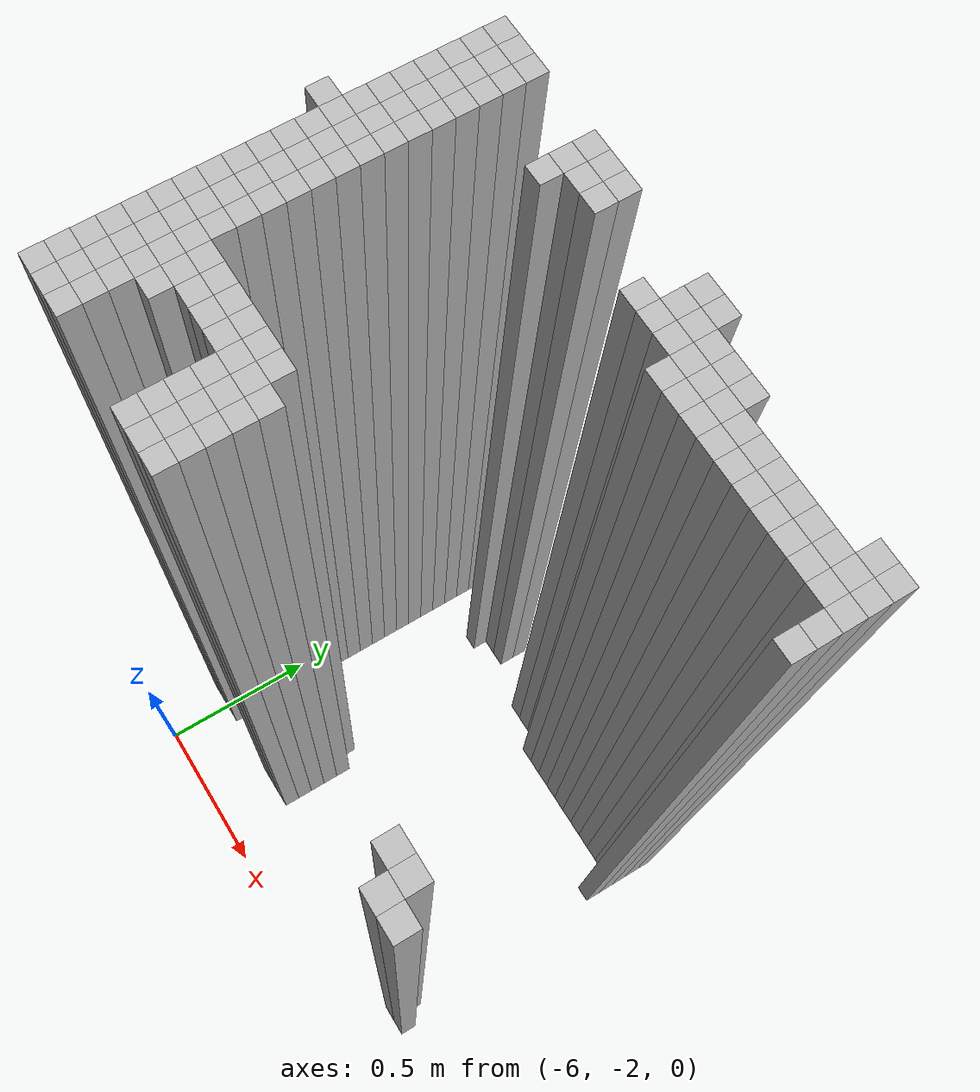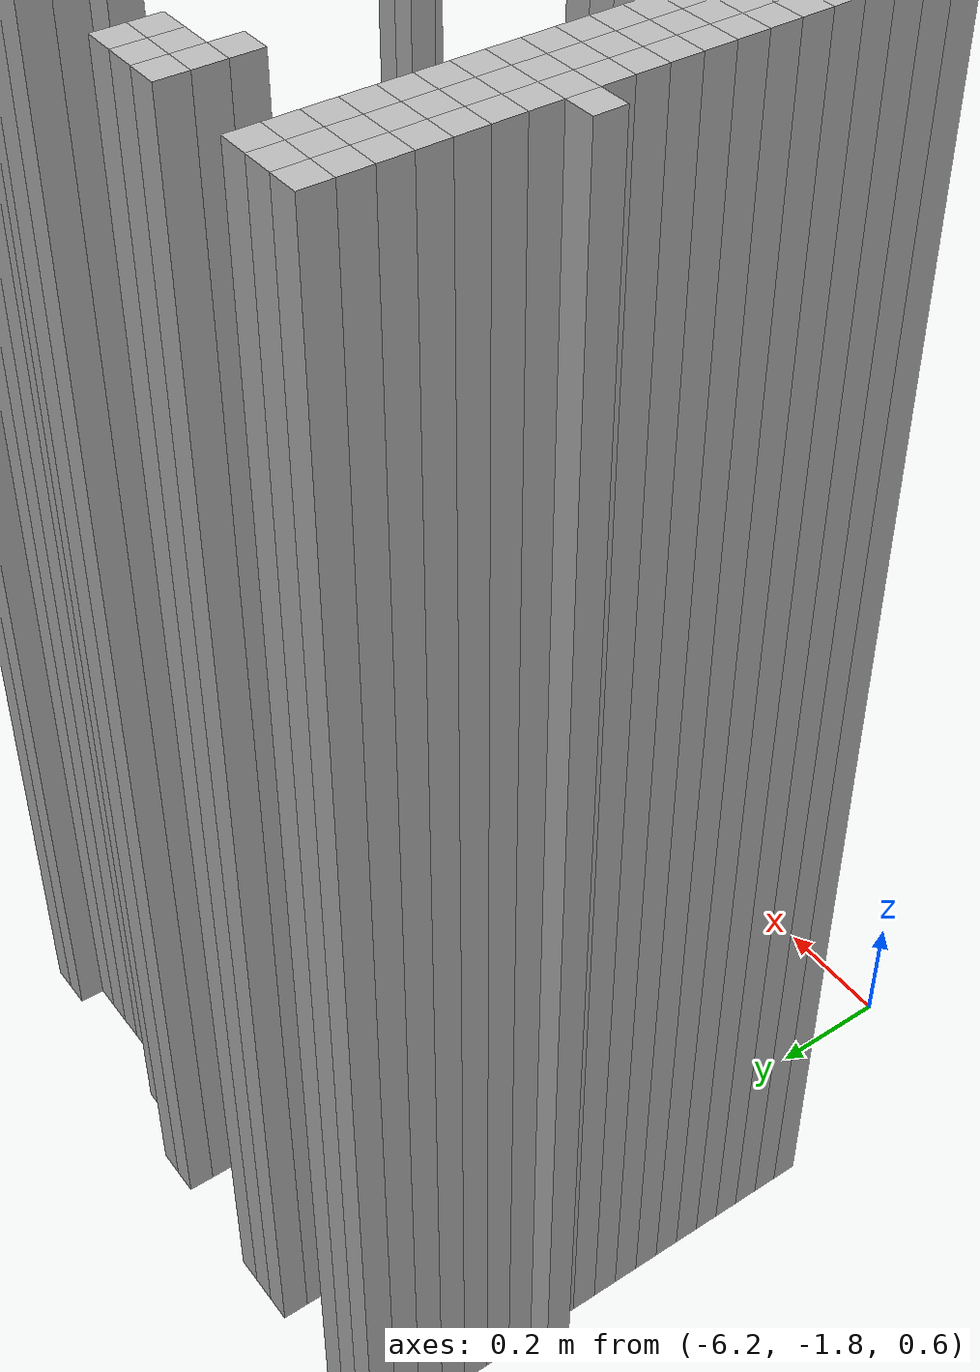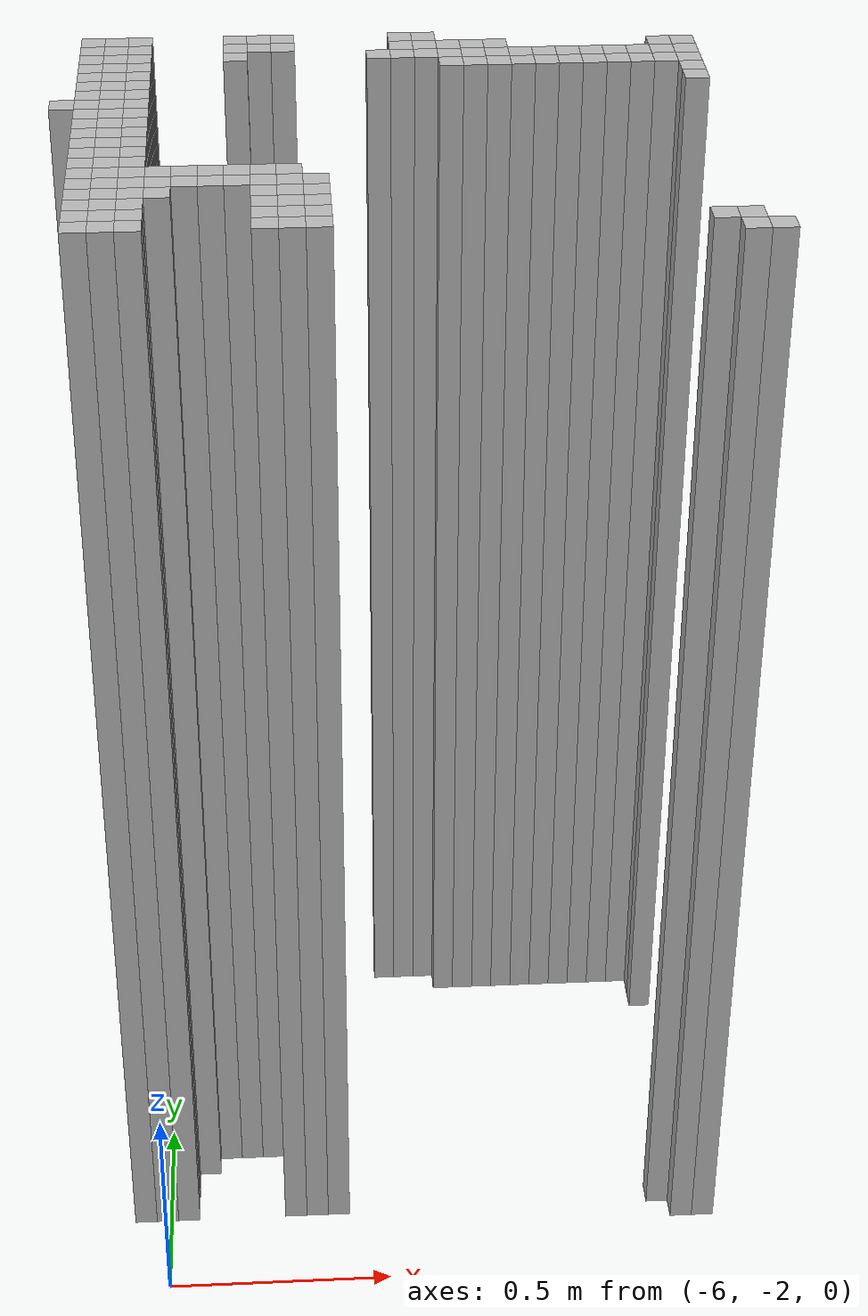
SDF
<sdf version="1.9">
 <world name="map_world">
  <model name="wall_102_170">
   <static>true</static>
   <pose>-6.061 -0.820 1.250 0 0 0</pose>
   <link name="link">
    <collision name="collision"><geometry><box><size>0.050 0.050 2.500</size></box></geometry></collision>
    <visual name="visual"><geometry><box><size>0.050 0.050 2.500</size></box></geometry></visual>
   </link>
  </model>
  <model name="wall_103_170">
   <static>true</static>
   <pose>-6.011 -0.820 1.250 0 0 0</pose>
   <link name="link">
    <collision name="collision"><geometry><box><size>0.050 0.050 2.500</size></box></geometry></collision>
    <visual name="visual"><geometry><box><size>0.050 0.050 2.500</size></box></geometry></visual>
   </link>
  </model>
  <model name="wall_104_170">
   <static>true</static>
   <pose>-5.961 -0.820 1.250 0 0 0</pose>
   <link name="link">
    <collision name="collision"><geometry><box><size>0.050 0.050 2.500</size></box></geometry></collision>
    <visual name="visual"><geometry><box><size>0.050 0.050 2.500</size></box></geometry></visual>
   </link>
  </model>
  <model name="wall_108_170">
   <static>true</static>
   <pose>-5.761 -0.820 1.250 0 0 0</pose>
   <link name="link">
    <collision name="collision"><geometry><box><size>0.050 0.050 2.500</size></box></geometry></collision>
    <visual name="visual"><geometry><box><size>0.050 0.050 2.500</size></box></geometry></visual>
   </link>
  </model>
  <model name="wall_109_170">
   <static>true</static>
   <pose>-5.711 -0.820 1.250 0 0 0</pose>
   <link name="link">
    <collision name="collision"><geometry><box><size>0.050 0.050 2.500</size></box></geometry></collision>
    <visual name="visual"><geometry><box><size>0.050 0.050 2.500</size></box></geometry></visual>
   </link>
  </model>
  <model name="wall_110_170">
   <static>true</static>
   <pose>-5.661 -0.820 1.250 0 0 0</pose>
   <link name="link">
    <collision name="collision"><geometry><box><size>0.050 0.050 2.500</size></box></geometry></collision>
    <visual name="visual"><geometry><box><size>0.050 0.050 2.500</size></box></geometry></visual>
   </link>
  </model>
  <model name="wall_115_170">
   <static>true</static>
   <pose>-5.411 -0.820 1.250 0 0 0</pose>
   <link name="link">
    <collision name="collision"><geometry><box><size>0.050 0.050 2.500</size></box></geometry></collision>
    <visual name="visual"><geometry><box><size>0.050 0.050 2.500</size></box></geometry></visual>
   </link>
  </model>
  <model name="wall_116_170">
   <static>true</static>
   <pose>-5.361 -0.820 1.250 0 0 0</pose>
   <link name="link">
    <collision name="collision"><geometry><box><size>0.050 0.050 2.500</size></box></geometry></collision>
    <visual name="visual"><geometry><box><size>0.050 0.050 2.500</size></box></geometry></visual>
   </link>
  </model>
  <model name="wall_102_171">
   <static>true</static>
   <pose>-6.061 -0.870 1.250 0 0 0</pose>
   <link name="link">
    <collision name="collision"><geometry><box><size>0.050 0.050 2.500</size></box></geometry></collision>
    <visual name="visual"><geometry><box><size>0.050 0.050 2.500</size></box></geometry></visual>
   </link>
  </model>
  <model name="wall_103_171">
   <static>true</static>
   <pose>-6.011 -0.870 1.250 0 0 0</pose>
   <link name="link">
    <collision name="collision"><geometry><box><size>0.050 0.050 2.500</size></box></geometry></collision>
    <visual name="visual"><geometry><box><size>0.050 0.050 2.500</size></box></geometry></visual>
   </link>
  </model>
  <model name="wall_104_171">
   <static>true</static>
   <pose>-5.961 -0.870 1.250 0 0 0</pose>
   <link name="link">
    <collision name="collision"><geometry><box><size>0.050 0.050 2.500</size></box></geometry></collision>
    <visual name="visual"><geometry><box><size>0.050 0.050 2.500</size></box></geometry></visual>
   </link>
  </model>
  <model name="wall_108_171">
   <static>true</static>
   <pose>-5.761 -0.870 1.250 0 0 0</pose>
   <link name="link">
    <collision name="collision"><geometry><box><size>0.050 0.050 2.500</size></box></geometry></collision>
    <visual name="visual"><geometry><box><size>0.050 0.050 2.500</size></box></geometry></visual>
   </link>
  </model>
  <model name="wall_109_171">
   <static>true</static>
   <pose>-5.711 -0.870 1.250 0 0 0</pose>
   <link name="link">
    <collision name="collision"><geometry><box><size>0.050 0.050 2.500</size></box></geometry></collision>
    <visual name="visual"><geometry><box><size>0.050 0.050 2.500</size></box></geometry></visual>
   </link>
  </model>
  <model name="wall_110_171">
   <static>true</static>
   <pose>-5.661 -0.870 1.250 0 0 0</pose>
   <link name="link">
    <collision name="collision"><geometry><box><size>0.050 0.050 2.500</size></box></geometry></collision>
    <visual name="visual"><geometry><box><size>0.050 0.050 2.500</size></box></geometry></visual>
   </link>
  </model>
  <model name="wall_115_171">
   <static>true</static>
   <pose>-5.411 -0.870 1.250 0 0 0</pose>
   <link name="link">
    <collision name="collision"><geometry><box><size>0.050 0.050 2.500</size></box></geometry></collision>
    <visual name="visual"><geometry><box><size>0.050 0.050 2.500</size></box></geometry></visual>
   </link>
  </model>
  <model name="wall_116_171">
   <static>true</static>
   <pose>-5.361 -0.870 1.250 0 0 0</pose>
   <link name="link">
    <collision name="collision"><geometry><box><size>0.050 0.050 2.500</size></box></geometry></collision>
    <visual name="visual"><geometry><box><size>0.050 0.050 2.500</size></box></geometry></visual>
   </link>
  </model>
  <model name="wall_117_171">
   <static>true</static>
   <pose>-5.311 -0.870 1.250 0 0 0</pose>
   <link name="link">
    <collision name="collision"><geometry><box><size>0.050 0.050 2.500</size></box></geometry></collision>
    <visual name="visual"><geometry><box><size>0.050 0.050 2.500</size></box></geometry></visual>
   </link>
  </model>
  <model name="wall_118_171">
   <static>true</static>
   <pose>-5.261 -0.870 1.250 0 0 0</pose>
   <link name="link">
    <collision name="collision"><geometry><box><size>0.050 0.050 2.500</size></box></geometry></collision>
    <visual name="visual"><geometry><box><size>0.050 0.050 2.500</size></box></geometry></visual>
   </link>
  </model>
  <model name="wall_119_171">
   <static>true</static>
   <pose>-5.211 -0.870 1.250 0 0 0</pose>
   <link name="link">
    <collision name="collision"><geometry><box><size>0.050 0.050 2.500</size></box></geometry></collision>
    <visual name="visual"><geometry><box><size>0.050 0.050 2.500</size></box></geometry></visual>
   </link>
  </model>
  <model name="wall_126_171">
   <static>true</static>
   <pose>-4.861 -0.870 1.250 0 0 0</pose>
   <link name="link">
    <collision name="collision"><geometry><box><size>0.050 0.050 2.500</size></box></geometry></collision>
    <visual name="visual"><geometry><box><size>0.050 0.050 2.500</size></box></geometry></visual>
   </link>
  </model>
  <model name="wall_127_171">
   <static>true</static>
   <pose>-4.811 -0.870 1.250 0 0 0</pose>
   <link name="link">
    <collision name="collision"><geometry><box><size>0.050 0.050 2.500</size></box></geometry></collision>
    <visual name="visual"><geometry><box><size>0.050 0.050 2.500</size></box></geometry></visual>
   </link>
  </model>
  <model name="wall_102_172">
   <static>true</static>
   <pose>-6.061 -0.920 1.250 0 0 0</pose>
   <link name="link">
    <collision name="collision"><geometry><box><size>0.050 0.050 2.500</size></box></geometry></collision>
    <visual name="visual"><geometry><box><size>0.050 0.050 2.500</size></box></geometry></visual>
   </link>
  </model>
  <model name="wall_103_172">
   <static>true</static>
   <pose>-6.011 -0.920 1.250 0 0 0</pose>
   <link name="link">
    <collision name="collision"><geometry><box><size>0.050 0.050 2.500</size></box></geometry></collision>
    <visual name="visual"><geometry><box><size>0.050 0.050 2.500</size></box></geometry></visual>
   </link>
  </model>
  <model name="wall_104_172">
   <static>true</static>
   <pose>-5.961 -0.920 1.250 0 0 0</pose>
   <link name="link">
    <collision name="collision"><geometry><box><size>0.050 0.050 2.500</size></box></geometry></collision>
    <visual name="visual"><geometry><box><size>0.050 0.050 2.500</size></box></geometry></visual>
   </link>
  </model>
  <model name="wall_108_172">
   <static>true</static>
   <pose>-5.761 -0.920 1.250 0 0 0</pose>
   <link name="link">
    <collision name="collision"><geometry><box><size>0.050 0.050 2.500</size></box></geometry></collision>
    <visual name="visual"><geometry><box><size>0.050 0.050 2.500</size></box></geometry></visual>
   </link>
  </model>
  <model name="wall_114_172">
   <static>true</static>
   <pose>-5.461 -0.920 1.250 0 0 0</pose>
   <link name="link">
    <collision name="collision"><geometry><box><size>0.050 0.050 2.500</size></box></geometry></collision>
    <visual name="visual"><geometry><box><size>0.050 0.050 2.500</size></box></geometry></visual>
   </link>
  </model>
  <model name="wall_115_172">
   <static>true</static>
   <pose>-5.411 -0.920 1.250 0 0 0</pose>
   <link name="link">
    <collision name="collision"><geometry><box><size>0.050 0.050 2.500</size></box></geometry></collision>
    <visual name="visual"><geometry><box><size>0.050 0.050 2.500</size></box></geometry></visual>
   </link>
  </model>
  <model name="wall_116_172">
   <static>true</static>
   <pose>-5.361 -0.920 1.250 0 0 0</pose>
   <link name="link">
    <collision name="collision"><geometry><box><size>0.050 0.050 2.500</size></box></geometry></collision>
    <visual name="visual"><geometry><box><size>0.050 0.050 2.500</size></box></geometry></visual>
   </link>
  </model>
  <model name="wall_117_172">
   <static>true</static>
   <pose>-5.311 -0.920 1.250 0 0 0</pose>
   <link name="link">
    <collision name="collision"><geometry><box><size>0.050 0.050 2.500</size></box></geometry></collision>
    <visual name="visual"><geometry><box><size>0.050 0.050 2.500</size></box></geometry></visual>
   </link>
  </model>
  <model name="wall_118_172">
   <static>true</static>
   <pose>-5.261 -0.920 1.250 0 0 0</pose>
   <link name="link">
    <collision name="collision"><geometry><box><size>0.050 0.050 2.500</size></box></geometry></collision>
    <visual name="visual"><geometry><box><size>0.050 0.050 2.500</size></box></geometry></visual>
   </link>
  </model>
  <model name="wall_119_172">
   <static>true</static>
   <pose>-5.211 -0.920 1.250 0 0 0</pose>
   <link name="link">
    <collision name="collision"><geometry><box><size>0.050 0.050 2.500</size></box></geometry></collision>
    <visual name="visual"><geometry><box><size>0.050 0.050 2.500</size></box></geometry></visual>
   </link>
  </model>
  <model name="wall_120_172">
   <static>true</static>
   <pose>-5.161 -0.920 1.250 0 0 0</pose>
   <link name="link">
    <collision name="collision"><geometry><box><size>0.050 0.050 2.500</size></box></geometry></collision>
    <visual name="visual"><geometry><box><size>0.050 0.050 2.500</size></box></geometry></visual>
   </link>
  </model>
  <model name="wall_121_172">
   <static>true</static>
   <pose>-5.111 -0.920 1.250 0 0 0</pose>
   <link name="link">
    <collision name="collision"><geometry><box><size>0.050 0.050 2.500</size></box></geometry></collision>
    <visual name="visual"><geometry><box><size>0.050 0.050 2.500</size></box></geometry></visual>
   </link>
  </model>
  <model name="wall_122_172">
   <static>true</static>
   <pose>-5.061 -0.920 1.250 0 0 0</pose>
   <link name="link">
    <collision name="collision"><geometry><box><size>0.050 0.050 2.500</size></box></geometry></collision>
    <visual name="visual"><geometry><box><size>0.050 0.050 2.500</size></box></geometry></visual>
   </link>
  </model>
  <model name="wall_123_172">
   <static>true</static>
   <pose>-5.011 -0.920 1.250 0 0 0</pose>
   <link name="link">
    <collision name="collision"><geometry><box><size>0.050 0.050 2.500</size></box></geometry></collision>
    <visual name="visual"><geometry><box><size>0.050 0.050 2.500</size></box></geometry></visual>
   </link>
  </model>
  <model name="wall_124_172">
   <static>true</static>
   <pose>-4.961 -0.920 1.250 0 0 0</pose>
   <link name="link">
    <collision name="collision"><geometry><box><size>0.050 0.050 2.500</size></box></geometry></collision>
    <visual name="visual"><geometry><box><size>0.050 0.050 2.500</size></box></geometry></visual>
   </link>
  </model>
  <model name="wall_125_172">
   <static>true</static>
   <pose>-4.911 -0.920 1.250 0 0 0</pose>
   <link name="link">
    <collision name="collision"><geometry><box><size>0.050 0.050 2.500</size></box></geometry></collision>
    <visual name="visual"><geometry><box><size>0.050 0.050 2.500</size></box></geometry></visual>
   </link>
  </model>
  <model name="wall_126_172">
   <static>true</static>
   <pose>-4.861 -0.920 1.250 0 0 0</pose>
   <link name="link">
    <collision name="collision"><geometry><box><size>0.050 0.050 2.500</size></box></geometry></collision>
    <visual name="visual"><geometry><box><size>0.050 0.050 2.500</size></box></geometry></visual>
   </link>
  </model>
  <model name="wall_127_172">
   <static>true</static>
   <pose>-4.811 -0.920 1.250 0 0 0</pose>
   <link name="link">
    <collision name="collision"><geometry><box><size>0.050 0.050 2.500</size></box></geometry></collision>
    <visual name="visual"><geometry><box><size>0.050 0.050 2.500</size></box></geometry></visual>
   </link>
  </model>
  <model name="wall_102_173">
   <static>true</static>
   <pose>-6.061 -0.970 1.250 0 0 0</pose>
   <link name="link">
    <collision name="collision"><geometry><box><size>0.050 0.050 2.500</size></box></geometry></collision>
    <visual name="visual"><geometry><box><size>0.050 0.050 2.500</size></box></geometry></visual>
   </link>
  </model>
  <model name="wall_103_173">
   <static>true</static>
   <pose>-6.011 -0.970 1.250 0 0 0</pose>
   <link name="link">
    <collision name="collision"><geometry><box><size>0.050 0.050 2.500</size></box></geometry></collision>
    <visual name="visual"><geometry><box><size>0.050 0.050 2.500</size></box></geometry></visual>
   </link>
  </model>
  <model name="wall_104_173">
   <static>true</static>
   <pose>-5.961 -0.970 1.250 0 0 0</pose>
   <link name="link">
    <collision name="collision"><geometry><box><size>0.050 0.050 2.500</size></box></geometry></collision>
    <visual name="visual"><geometry><box><size>0.050 0.050 2.500</size></box></geometry></visual>
   </link>
  </model>
  <model name="wall_117_173">
   <static>true</static>
   <pose>-5.311 -0.970 1.250 0 0 0</pose>
   <link name="link">
    <collision name="collision"><geometry><box><size>0.050 0.050 2.500</size></box></geometry></collision>
    <visual name="visual"><geometry><box><size>0.050 0.050 2.500</size></box></geometry></visual>
   </link>
  </model>
  <model name="wall_118_173">
   <static>true</static>
   <pose>-5.261 -0.970 1.250 0 0 0</pose>
   <link name="link">
    <collision name="collision"><geometry><box><size>0.050 0.050 2.500</size></box></geometry></collision>
    <visual name="visual"><geometry><box><size>0.050 0.050 2.500</size></box></geometry></visual>
   </link>
  </model>
  <model name="wall_119_173">
   <static>true</static>
   <pose>-5.211 -0.970 1.250 0 0 0</pose>
   <link name="link">
    <collision name="collision"><geometry><box><size>0.050 0.050 2.500</size></box></geometry></collision>
    <visual name="visual"><geometry><box><size>0.050 0.050 2.500</size></box></geometry></visual>
   </link>
  </model>
  <model name="wall_120_173">
   <static>true</static>
   <pose>-5.161 -0.970 1.250 0 0 0</pose>
   <link name="link">
    <collision name="collision"><geometry><box><size>0.050 0.050 2.500</size></box></geometry></collision>
    <visual name="visual"><geometry><box><size>0.050 0.050 2.500</size></box></geometry></visual>
   </link>
  </model>
  <model name="wall_121_173">
   <static>true</static>
   <pose>-5.111 -0.970 1.250 0 0 0</pose>
   <link name="link">
    <collision name="collision"><geometry><box><size>0.050 0.050 2.500</size></box></geometry></collision>
    <visual name="visual"><geometry><box><size>0.050 0.050 2.500</size></box></geometry></visual>
   </link>
  </model>
  <model name="wall_122_173">
   <static>true</static>
   <pose>-5.061 -0.970 1.250 0 0 0</pose>
   <link name="link">
    <collision name="collision"><geometry><box><size>0.050 0.050 2.500</size></box></geometry></collision>
    <visual name="visual"><geometry><box><size>0.050 0.050 2.500</size></box></geometry></visual>
   </link>
  </model>
  <model name="wall_123_173">
   <static>true</static>
   <pose>-5.011 -0.970 1.250 0 0 0</pose>
   <link name="link">
    <collision name="collision"><geometry><box><size>0.050 0.050 2.500</size></box></geometry></collision>
    <visual name="visual"><geometry><box><size>0.050 0.050 2.500</size></box></geometry></visual>
   </link>
  </model>
  <model name="wall_124_173">
   <static>true</static>
   <pose>-4.961 -0.970 1.250 0 0 0</pose>
   <link name="link">
    <collision name="collision"><geometry><box><size>0.050 0.050 2.500</size></box></geometry></collision>
    <visual name="visual"><geometry><box><size>0.050 0.050 2.500</size></box></geometry></visual>
   </link>
  </model>
  <model name="wall_125_173">
   <static>true</static>
   <pose>-4.911 -0.970 1.250 0 0 0</pose>
   <link name="link">
    <collision name="collision"><geometry><box><size>0.050 0.050 2.500</size></box></geometry></collision>
    <visual name="visual"><geometry><box><size>0.050 0.050 2.500</size></box></geometry></visual>
   </link>
  </model>
  <model name="wall_126_173">
   <static>true</static>
   <pose>-4.861 -0.970 1.250 0 0 0</pose>
   <link name="link">
    <collision name="collision"><geometry><box><size>0.050 0.050 2.500</size></box></geometry></collision>
    <visual name="visual"><geometry><box><size>0.050 0.050 2.500</size></box></geometry></visual>
   </link>
  </model>
  <model name="wall_127_173">
   <static>true</static>
   <pose>-4.811 -0.970 1.250 0 0 0</pose>
   <link name="link">
    <collision name="collision"><geometry><box><size>0.050 0.050 2.500</size></box></geometry></collision>
    <visual name="visual"><geometry><box><size>0.050 0.050 2.500</size></box></geometry></visual>
   </link>
  </model>
  <model name="wall_102_174">
   <static>true</static>
   <pose>-6.061 -1.020 1.250 0 0 0</pose>
   <link name="link">
    <collision name="collision"><geometry><box><size>0.050 0.050 2.500</size></box></geometry></collision>
    <visual name="visual"><geometry><box><size>0.050 0.050 2.500</size></box></geometry></visual>
   </link>
  </model>
  <model name="wall_103_174">
   <static>true</static>
   <pose>-6.011 -1.020 1.250 0 0 0</pose>
   <link name="link">
    <collision name="collision"><geometry><box><size>0.050 0.050 2.500</size></box></geometry></collision>
    <visual name="visual"><geometry><box><size>0.050 0.050 2.500</size></box></geometry></visual>
   </link>
  </model>
  <model name="wall_104_174">
   <static>true</static>
   <pose>-5.961 -1.020 1.250 0 0 0</pose>
   <link name="link">
    <collision name="collision"><geometry><box><size>0.050 0.050 2.500</size></box></geometry></collision>
    <visual name="visual"><geometry><box><size>0.050 0.050 2.500</size></box></geometry></visual>
   </link>
  </model>
  <model name="wall_127_174">
   <static>true</static>
   <pose>-4.811 -1.020 1.250 0 0 0</pose>
   <link name="link">
    <collision name="collision"><geometry><box><size>0.050 0.050 2.500</size></box></geometry></collision>
    <visual name="visual"><geometry><box><size>0.050 0.050 2.500</size></box></geometry></visual>
   </link>
  </model>
  <model name="wall_102_175">
   <static>true</static>
   <pose>-6.061 -1.070 1.250 0 0 0</pose>
   <link name="link">
    <collision name="collision"><geometry><box><size>0.050 0.050 2.500</size></box></geometry></collision>
    <visual name="visual"><geometry><box><size>0.050 0.050 2.500</size></box></geometry></visual>
   </link>
  </model>
  <model name="wall_103_175">
   <static>true</static>
   <pose>-6.011 -1.070 1.250 0 0 0</pose>
   <link name="link">
    <collision name="collision"><geometry><box><size>0.050 0.050 2.500</size></box></geometry></collision>
    <visual name="visual"><geometry><box><size>0.050 0.050 2.500</size></box></geometry></visual>
   </link>
  </model>
  <model name="wall_104_175">
   <static>true</static>
   <pose>-5.961 -1.070 1.250 0 0 0</pose>
   <link name="link">
    <collision name="collision"><geometry><box><size>0.050 0.050 2.500</size></box></geometry></collision>
    <visual name="visual"><geometry><box><size>0.050 0.050 2.500</size></box></geometry></visual>
   </link>
  </model>
  <model name="wall_127_175">
   <static>true</static>
   <pose>-4.811 -1.070 1.250 0 0 0</pose>
   <link name="link">
    <collision name="collision"><geometry><box><size>0.050 0.050 2.500</size></box></geometry></collision>
    <visual name="visual"><geometry><box><size>0.050 0.050 2.500</size></box></geometry></visual>
   </link>
  </model>
  <model name="wall_102_176">
   <static>true</static>
   <pose>-6.061 -1.120 1.250 0 0 0</pose>
   <link name="link">
    <collision name="collision"><geometry><box><size>0.050 0.050 2.500</size></box></geometry></collision>
    <visual name="visual"><geometry><box><size>0.050 0.050 2.500</size></box></geometry></visual>
   </link>
  </model>
  <model name="wall_103_176">
   <static>true</static>
   <pose>-6.011 -1.120 1.250 0 0 0</pose>
   <link name="link">
    <collision name="collision"><geometry><box><size>0.050 0.050 2.500</size></box></geometry></collision>
    <visual name="visual"><geometry><box><size>0.050 0.050 2.500</size></box></geometry></visual>
   </link>
  </model>
  <model name="wall_104_176">
   <static>true</static>
   <pose>-5.961 -1.120 1.250 0 0 0</pose>
   <link name="link">
    <collision name="collision"><geometry><box><size>0.050 0.050 2.500</size></box></geometry></collision>
    <visual name="visual"><geometry><box><size>0.050 0.050 2.500</size></box></geometry></visual>
   </link>
  </model>
  <model name="wall_101_177">
   <static>true</static>
   <pose>-6.111 -1.170 1.250 0 0 0</pose>
   <link name="link">
    <collision name="collision"><geometry><box><size>0.050 0.050 2.500</size></box></geometry></collision>
    <visual name="visual"><geometry><box><size>0.050 0.050 2.500</size></box></geometry></visual>
   </link>
  </model>
  <model name="wall_102_177">
   <static>true</static>
   <pose>-6.061 -1.170 1.250 0 0 0</pose>
   <link name="link">
    <collision name="collision"><geometry><box><size>0.050 0.050 2.500</size></box></geometry></collision>
    <visual name="visual"><geometry><box><size>0.050 0.050 2.500</size></box></geometry></visual>
   </link>
  </model>
  <model name="wall_103_177">
   <static>true</static>
   <pose>-6.011 -1.170 1.250 0 0 0</pose>
   <link name="link">
    <collision name="collision"><geometry><box><size>0.050 0.050 2.500</size></box></geometry></collision>
    <visual name="visual"><geometry><box><size>0.050 0.050 2.500</size></box></geometry></visual>
   </link>
  </model>
  <model name="wall_104_177">
   <static>true</static>
   <pose>-5.961 -1.170 1.250 0 0 0</pose>
   <link name="link">
    <collision name="collision"><geometry><box><size>0.050 0.050 2.500</size></box></geometry></collision>
    <visual name="visual"><geometry><box><size>0.050 0.050 2.500</size></box></geometry></visual>
   </link>
  </model>
  <model name="wall_102_178">
   <static>true</static>
   <pose>-6.061 -1.220 1.250 0 0 0</pose>
   <link name="link">
    <collision name="collision"><geometry><box><size>0.050 0.050 2.500</size></box></geometry></collision>
    <visual name="visual"><geometry><box><size>0.050 0.050 2.500</size></box></geometry></visual>
   </link>
  </model>
  <model name="wall_103_178">
   <static>true</static>
   <pose>-6.011 -1.220 1.250 0 0 0</pose>
   <link name="link">
    <collision name="collision"><geometry><box><size>0.050 0.050 2.500</size></box></geometry></collision>
    <visual name="visual"><geometry><box><size>0.050 0.050 2.500</size></box></geometry></visual>
   </link>
  </model>
  <model name="wall_104_178">
   <static>true</static>
   <pose>-5.961 -1.220 1.250 0 0 0</pose>
   <link name="link">
    <collision name="collision"><geometry><box><size>0.050 0.050 2.500</size></box></geometry></collision>
    <visual name="visual"><geometry><box><size>0.050 0.050 2.500</size></box></geometry></visual>
   </link>
  </model>
  <model name="wall_102_179">
   <static>true</static>
   <pose>-6.061 -1.270 1.250 0 0 0</pose>
   <link name="link">
    <collision name="collision"><geometry><box><size>0.050 0.050 2.500</size></box></geometry></collision>
    <visual name="visual"><geometry><box><size>0.050 0.050 2.500</size></box></geometry></visual>
   </link>
  </model>
  <model name="wall_103_179">
   <static>true</static>
   <pose>-6.011 -1.270 1.250 0 0 0</pose>
   <link name="link">
    <collision name="collision"><geometry><box><size>0.050 0.050 2.500</size></box></geometry></collision>
    <visual name="visual"><geometry><box><size>0.050 0.050 2.500</size></box></geometry></visual>
   </link>
  </model>
  <model name="wall_104_179">
   <static>true</static>
   <pose>-5.961 -1.270 1.250 0 0 0</pose>
   <link name="link">
    <collision name="collision"><geometry><box><size>0.050 0.050 2.500</size></box></geometry></collision>
    <visual name="visual"><geometry><box><size>0.050 0.050 2.500</size></box></geometry></visual>
   </link>
  </model>
  <model name="wall_102_180">
   <static>true</static>
   <pose>-6.061 -1.320 1.250 0 0 0</pose>
   <link name="link">
    <collision name="collision"><geometry><box><size>0.050 0.050 2.500</size></box></geometry></collision>
    <visual name="visual"><geometry><box><size>0.050 0.050 2.500</size></box></geometry></visual>
   </link>
  </model>
  <model name="wall_103_180">
   <static>true</static>
   <pose>-6.011 -1.320 1.250 0 0 0</pose>
   <link name="link">
    <collision name="collision"><geometry><box><size>0.050 0.050 2.500</size></box></geometry></collision>
    <visual name="visual"><geometry><box><size>0.050 0.050 2.500</size></box></geometry></visual>
   </link>
  </model>
  <model name="wall_104_180">
   <static>true</static>
   <pose>-5.961 -1.320 1.250 0 0 0</pose>
   <link name="link">
    <collision name="collision"><geometry><box><size>0.050 0.050 2.500</size></box></geometry></collision>
    <visual name="visual"><geometry><box><size>0.050 0.050 2.500</size></box></geometry></visual>
   </link>
  </model>
  <model name="wall_102_181">
   <static>true</static>
   <pose>-6.061 -1.370 1.250 0 0 0</pose>
   <link name="link">
    <collision name="collision"><geometry><box><size>0.050 0.050 2.500</size></box></geometry></collision>
    <visual name="visual"><geometry><box><size>0.050 0.050 2.500</size></box></geometry></visual>
   </link>
  </model>
  <model name="wall_103_181">
   <static>true</static>
   <pose>-6.011 -1.370 1.250 0 0 0</pose>
   <link name="link">
    <collision name="collision"><geometry><box><size>0.050 0.050 2.500</size></box></geometry></collision>
    <visual name="visual"><geometry><box><size>0.050 0.050 2.500</size></box></geometry></visual>
   </link>
  </model>
  <model name="wall_104_181">
   <static>true</static>
   <pose>-5.961 -1.370 1.250 0 0 0</pose>
   <link name="link">
    <collision name="collision"><geometry><box><size>0.050 0.050 2.500</size></box></geometry></collision>
    <visual name="visual"><geometry><box><size>0.050 0.050 2.500</size></box></geometry></visual>
   </link>
  </model>
  <model name="wall_102_182">
   <static>true</static>
   <pose>-6.061 -1.420 1.250 0 0 0</pose>
   <link name="link">
    <collision name="collision"><geometry><box><size>0.050 0.050 2.500</size></box></geometry></collision>
    <visual name="visual"><geometry><box><size>0.050 0.050 2.500</size></box></geometry></visual>
   </link>
  </model>
  <model name="wall_103_182">
   <static>true</static>
   <pose>-6.011 -1.420 1.250 0 0 0</pose>
   <link name="link">
    <collision name="collision"><geometry><box><size>0.050 0.050 2.500</size></box></geometry></collision>
    <visual name="visual"><geometry><box><size>0.050 0.050 2.500</size></box></geometry></visual>
   </link>
  </model>
  <model name="wall_104_182">
   <static>true</static>
   <pose>-5.961 -1.420 1.250 0 0 0</pose>
   <link name="link">
    <collision name="collision"><geometry><box><size>0.050 0.050 2.500</size></box></geometry></collision>
    <visual name="visual"><geometry><box><size>0.050 0.050 2.500</size></box></geometry></visual>
   </link>
  </model>
  <model name="wall_102_183">
   <static>true</static>
   <pose>-6.061 -1.470 1.250 0 0 0</pose>
   <link name="link">
    <collision name="collision"><geometry><box><size>0.050 0.050 2.500</size></box></geometry></collision>
    <visual name="visual"><geometry><box><size>0.050 0.050 2.500</size></box></geometry></visual>
   </link>
  </model>
  <model name="wall_103_183">
   <static>true</static>
   <pose>-6.011 -1.470 1.250 0 0 0</pose>
   <link name="link">
    <collision name="collision"><geometry><box><size>0.050 0.050 2.500</size></box></geometry></collision>
    <visual name="visual"><geometry><box><size>0.050 0.050 2.500</size></box></geometry></visual>
   </link>
  </model>
  <model name="wall_104_183">
   <static>true</static>
   <pose>-5.961 -1.470 1.250 0 0 0</pose>
   <link name="link">
    <collision name="collision"><geometry><box><size>0.050 0.050 2.500</size></box></geometry></collision>
    <visual name="visual"><geometry><box><size>0.050 0.050 2.500</size></box></geometry></visual>
   </link>
  </model>
  <model name="wall_102_184">
   <static>true</static>
   <pose>-6.061 -1.520 1.250 0 0 0</pose>
   <link name="link">
    <collision name="collision"><geometry><box><size>0.050 0.050 2.500</size></box></geometry></collision>
    <visual name="visual"><geometry><box><size>0.050 0.050 2.500</size></box></geometry></visual>
   </link>
  </model>
  <model name="wall_103_184">
   <static>true</static>
   <pose>-6.011 -1.520 1.250 0 0 0</pose>
   <link name="link">
    <collision name="collision"><geometry><box><size>0.050 0.050 2.500</size></box></geometry></collision>
    <visual name="visual"><geometry><box><size>0.050 0.050 2.500</size></box></geometry></visual>
   </link>
  </model>
  <model name="wall_104_184">
   <static>true</static>
   <pose>-5.961 -1.520 1.250 0 0 0</pose>
   <link name="link">
    <collision name="collision"><geometry><box><size>0.050 0.050 2.500</size></box></geometry></collision>
    <visual name="visual"><geometry><box><size>0.050 0.050 2.500</size></box></geometry></visual>
   </link>
  </model>
  <model name="wall_105_184">
   <static>true</static>
   <pose>-5.911 -1.520 1.250 0 0 0</pose>
   <link name="link">
    <collision name="collision"><geometry><box><size>0.050 0.050 2.500</size></box></geometry></collision>
    <visual name="visual"><geometry><box><size>0.050 0.050 2.500</size></box></geometry></visual>
   </link>
  </model>
  <model name="wall_106_184">
   <static>true</static>
   <pose>-5.861 -1.520 1.250 0 0 0</pose>
   <link name="link">
    <collision name="collision"><geometry><box><size>0.050 0.050 2.500</size></box></geometry></collision>
    <visual name="visual"><geometry><box><size>0.050 0.050 2.500</size></box></geometry></visual>
   </link>
  </model>
  <model name="wall_107_184">
   <static>true</static>
   <pose>-5.811 -1.520 1.250 0 0 0</pose>
   <link name="link">
    <collision name="collision"><geometry><box><size>0.050 0.050 2.500</size></box></geometry></collision>
    <visual name="visual"><geometry><box><size>0.050 0.050 2.500</size></box></geometry></visual>
   </link>
  </model>
  <model name="wall_108_184">
   <static>true</static>
   <pose>-5.761 -1.520 1.250 0 0 0</pose>
   <link name="link">
    <collision name="collision"><geometry><box><size>0.050 0.050 2.500</size></box></geometry></collision>
    <visual name="visual"><geometry><box><size>0.050 0.050 2.500</size></box></geometry></visual>
   </link>
  </model>
  <model name="wall_109_184">
   <static>true</static>
   <pose>-5.711 -1.520 1.250 0 0 0</pose>
   <link name="link">
    <collision name="collision"><geometry><box><size>0.050 0.050 2.500</size></box></geometry></collision>
    <visual name="visual"><geometry><box><size>0.050 0.050 2.500</size></box></geometry></visual>
   </link>
  </model>
  <model name="wall_110_184">
   <static>true</static>
   <pose>-5.661 -1.520 1.250 0 0 0</pose>
   <link name="link">
    <collision name="collision"><geometry><box><size>0.050 0.050 2.500</size></box></geometry></collision>
    <visual name="visual"><geometry><box><size>0.050 0.050 2.500</size></box></geometry></visual>
   </link>
  </model>
  <model name="wall_102_185">
   <static>true</static>
   <pose>-6.061 -1.570 1.250 0 0 0</pose>
   <link name="link">
    <collision name="collision"><geometry><box><size>0.050 0.050 2.500</size></box></geometry></collision>
    <visual name="visual"><geometry><box><size>0.050 0.050 2.500</size></box></geometry></visual>
   </link>
  </model>
  <model name="wall_103_185">
   <static>true</static>
   <pose>-6.011 -1.570 1.250 0 0 0</pose>
   <link name="link">
    <collision name="collision"><geometry><box><size>0.050 0.050 2.500</size></box></geometry></collision>
    <visual name="visual"><geometry><box><size>0.050 0.050 2.500</size></box></geometry></visual>
   </link>
  </model>
  <model name="wall_104_185">
   <static>true</static>
   <pose>-5.961 -1.570 1.250 0 0 0</pose>
   <link name="link">
    <collision name="collision"><geometry><box><size>0.050 0.050 2.500</size></box></geometry></collision>
    <visual name="visual"><geometry><box><size>0.050 0.050 2.500</size></box></geometry></visual>
   </link>
  </model>
  <model name="wall_105_185">
   <static>true</static>
   <pose>-5.911 -1.570 1.250 0 0 0</pose>
   <link name="link">
    <collision name="collision"><geometry><box><size>0.050 0.050 2.500</size></box></geometry></collision>
    <visual name="visual"><geometry><box><size>0.050 0.050 2.500</size></box></geometry></visual>
   </link>
  </model>
  <model name="wall_106_185">
   <static>true</static>
   <pose>-5.861 -1.570 1.250 0 0 0</pose>
   <link name="link">
    <collision name="collision"><geometry><box><size>0.050 0.050 2.500</size></box></geometry></collision>
    <visual name="visual"><geometry><box><size>0.050 0.050 2.500</size></box></geometry></visual>
   </link>
  </model>
  <model name="wall_107_185">
   <static>true</static>
   <pose>-5.811 -1.570 1.250 0 0 0</pose>
   <link name="link">
    <collision name="collision"><geometry><box><size>0.050 0.050 2.500</size></box></geometry></collision>
    <visual name="visual"><geometry><box><size>0.050 0.050 2.500</size></box></geometry></visual>
   </link>
  </model>
  <model name="wall_108_185">
   <static>true</static>
   <pose>-5.761 -1.570 1.250 0 0 0</pose>
   <link name="link">
    <collision name="collision"><geometry><box><size>0.050 0.050 2.500</size></box></geometry></collision>
    <visual name="visual"><geometry><box><size>0.050 0.050 2.500</size></box></geometry></visual>
   </link>
  </model>
  <model name="wall_109_185">
   <static>true</static>
   <pose>-5.711 -1.570 1.250 0 0 0</pose>
   <link name="link">
    <collision name="collision"><geometry><box><size>0.050 0.050 2.500</size></box></geometry></collision>
    <visual name="visual"><geometry><box><size>0.050 0.050 2.500</size></box></geometry></visual>
   </link>
  </model>
  <model name="wall_110_185">
   <static>true</static>
   <pose>-5.661 -1.570 1.250 0 0 0</pose>
   <link name="link">
    <collision name="collision"><geometry><box><size>0.050 0.050 2.500</size></box></geometry></collision>
    <visual name="visual"><geometry><box><size>0.050 0.050 2.500</size></box></geometry></visual>
   </link>
  </model>
  <model name="wall_111_185">
   <static>true</static>
   <pose>-5.611 -1.570 1.250 0 0 0</pose>
   <link name="link">
    <collision name="collision"><geometry><box><size>0.050 0.050 2.500</size></box></geometry></collision>
    <visual name="visual"><geometry><box><size>0.050 0.050 2.500</size></box></geometry></visual>
   </link>
  </model>
  <model name="wall_102_186">
   <static>true</static>
   <pose>-6.061 -1.620 1.250 0 0 0</pose>
   <link name="link">
    <collision name="collision"><geometry><box><size>0.050 0.050 2.500</size></box></geometry></collision>
    <visual name="visual"><geometry><box><size>0.050 0.050 2.500</size></box></geometry></visual>
   </link>
  </model>
  <model name="wall_103_186">
   <static>true</static>
   <pose>-6.011 -1.620 1.250 0 0 0</pose>
   <link name="link">
    <collision name="collision"><geometry><box><size>0.050 0.050 2.500</size></box></geometry></collision>
    <visual name="visual"><geometry><box><size>0.050 0.050 2.500</size></box></geometry></visual>
   </link>
  </model>
  <model name="wall_104_186">
   <static>true</static>
   <pose>-5.961 -1.620 1.250 0 0 0</pose>
   <link name="link">
    <collision name="collision"><geometry><box><size>0.050 0.050 2.500</size></box></geometry></collision>
    <visual name="visual"><geometry><box><size>0.050 0.050 2.500</size></box></geometry></visual>
   </link>
  </model>
  <model name="wall_105_186">
   <static>true</static>
   <pose>-5.911 -1.620 1.250 0 0 0</pose>
   <link name="link">
    <collision name="collision"><geometry><box><size>0.050 0.050 2.500</size></box></geometry></collision>
    <visual name="visual"><geometry><box><size>0.050 0.050 2.500</size></box></geometry></visual>
   </link>
  </model>
  <model name="wall_109_186">
   <static>true</static>
   <pose>-5.711 -1.620 1.250 0 0 0</pose>
   <link name="link">
    <collision name="collision"><geometry><box><size>0.050 0.050 2.500</size></box></geometry></collision>
    <visual name="visual"><geometry><box><size>0.050 0.050 2.500</size></box></geometry></visual>
   </link>
  </model>
  <model name="wall_110_186">
   <static>true</static>
   <pose>-5.661 -1.620 1.250 0 0 0</pose>
   <link name="link">
    <collision name="collision"><geometry><box><size>0.050 0.050 2.500</size></box></geometry></collision>
    <visual name="visual"><geometry><box><size>0.050 0.050 2.500</size></box></geometry></visual>
   </link>
  </model>
  <model name="wall_111_186">
   <static>true</static>
   <pose>-5.611 -1.620 1.250 0 0 0</pose>
   <link name="link">
    <collision name="collision"><geometry><box><size>0.050 0.050 2.500</size></box></geometry></collision>
    <visual name="visual"><geometry><box><size>0.050 0.050 2.500</size></box></geometry></visual>
   </link>
  </model>
  <model name="wall_102_187">
   <static>true</static>
   <pose>-6.061 -1.670 1.250 0 0 0</pose>
   <link name="link">
    <collision name="collision"><geometry><box><size>0.050 0.050 2.500</size></box></geometry></collision>
    <visual name="visual"><geometry><box><size>0.050 0.050 2.500</size></box></geometry></visual>
   </link>
  </model>
  <model name="wall_103_187">
   <static>true</static>
   <pose>-6.011 -1.670 1.250 0 0 0</pose>
   <link name="link">
    <collision name="collision"><geometry><box><size>0.050 0.050 2.500</size></box></geometry></collision>
    <visual name="visual"><geometry><box><size>0.050 0.050 2.500</size></box></geometry></visual>
   </link>
  </model>
  <model name="wall_104_187">
   <static>true</static>
   <pose>-5.961 -1.670 1.250 0 0 0</pose>
   <link name="link">
    <collision name="collision"><geometry><box><size>0.050 0.050 2.500</size></box></geometry></collision>
    <visual name="visual"><geometry><box><size>0.050 0.050 2.500</size></box></geometry></visual>
   </link>
  </model>
  <model name="wall_109_187">
   <static>true</static>
   <pose>-5.711 -1.670 1.250 0 0 0</pose>
   <link name="link">
    <collision name="collision"><geometry><box><size>0.050 0.050 2.500</size></box></geometry></collision>
    <visual name="visual"><geometry><box><size>0.050 0.050 2.500</size></box></geometry></visual>
   </link>
  </model>
  <model name="wall_110_187">
   <static>true</static>
   <pose>-5.661 -1.670 1.250 0 0 0</pose>
   <link name="link">
    <collision name="collision"><geometry><box><size>0.050 0.050 2.500</size></box></geometry></collision>
    <visual name="visual"><geometry><box><size>0.050 0.050 2.500</size></box></geometry></visual>
   </link>
  </model>
  <model name="wall_111_187">
   <static>true</static>
   <pose>-5.611 -1.670 1.250 0 0 0</pose>
   <link name="link">
    <collision name="collision"><geometry><box><size>0.050 0.050 2.500</size></box></geometry></collision>
    <visual name="visual"><geometry><box><size>0.050 0.050 2.500</size></box></geometry></visual>
   </link>
  </model>
  <model name="wall_102_188">
   <static>true</static>
   <pose>-6.061 -1.720 1.250 0 0 0</pose>
   <link name="link">
    <collision name="collision"><geometry><box><size>0.050 0.050 2.500</size></box></geometry></collision>
    <visual name="visual"><geometry><box><size>0.050 0.050 2.500</size></box></geometry></visual>
   </link>
  </model>
  <model name="wall_103_188">
   <static>true</static>
   <pose>-6.011 -1.720 1.250 0 0 0</pose>
   <link name="link">
    <collision name="collision"><geometry><box><size>0.050 0.050 2.500</size></box></geometry></collision>
    <visual name="visual"><geometry><box><size>0.050 0.050 2.500</size></box></geometry></visual>
   </link>
  </model>
  <model name="wall_104_188">
   <static>true</static>
   <pose>-5.961 -1.720 1.250 0 0 0</pose>
   <link name="link">
    <collision name="collision"><geometry><box><size>0.050 0.050 2.500</size></box></geometry></collision>
    <visual name="visual"><geometry><box><size>0.050 0.050 2.500</size></box></geometry></visual>
   </link>
  </model>
  <model name="wall_109_188">
   <static>true</static>
   <pose>-5.711 -1.720 1.250 0 0 0</pose>
   <link name="link">
    <collision name="collision"><geometry><box><size>0.050 0.050 2.500</size></box></geometry></collision>
    <visual name="visual"><geometry><box><size>0.050 0.050 2.500</size></box></geometry></visual>
   </link>
  </model>
  <model name="wall_110_188">
   <static>true</static>
   <pose>-5.661 -1.720 1.250 0 0 0</pose>
   <link name="link">
    <collision name="collision"><geometry><box><size>0.050 0.050 2.500</size></box></geometry></collision>
    <visual name="visual"><geometry><box><size>0.050 0.050 2.500</size></box></geometry></visual>
   </link>
  </model>
  <model name="wall_111_188">
   <static>true</static>
   <pose>-5.611 -1.720 1.250 0 0 0</pose>
   <link name="link">
    <collision name="collision"><geometry><box><size>0.050 0.050 2.500</size></box></geometry></collision>
    <visual name="visual"><geometry><box><size>0.050 0.050 2.500</size></box></geometry></visual>
   </link>
  </model>
  <model name="wall_102_189">
   <static>true</static>
   <pose>-6.061 -1.770 1.250 0 0 0</pose>
   <link name="link">
    <collision name="collision"><geometry><box><size>0.050 0.050 2.500</size></box></geometry></collision>
    <visual name="visual"><geometry><box><size>0.050 0.050 2.500</size></box></geometry></visual>
   </link>
  </model>
  <model name="wall_103_189">
   <static>true</static>
   <pose>-6.011 -1.770 1.250 0 0 0</pose>
   <link name="link">
    <collision name="collision"><geometry><box><size>0.050 0.050 2.500</size></box></geometry></collision>
    <visual name="visual"><geometry><box><size>0.050 0.050 2.500</size></box></geometry></visual>
   </link>
  </model>
  <model name="wall_104_189">
   <static>true</static>
   <pose>-5.961 -1.770 1.250 0 0 0</pose>
   <link name="link">
    <collision name="collision"><geometry><box><size>0.050 0.050 2.500</size></box></geometry></collision>
    <visual name="visual"><geometry><box><size>0.050 0.050 2.500</size></box></geometry></visual>
   </link>
  </model>
  <model name="wall_109_189">
   <static>true</static>
   <pose>-5.711 -1.770 1.250 0 0 0</pose>
   <link name="link">
    <collision name="collision"><geometry><box><size>0.050 0.050 2.500</size></box></geometry></collision>
    <visual name="visual"><geometry><box><size>0.050 0.050 2.500</size></box></geometry></visual>
   </link>
  </model>
  <model name="wall_110_189">
   <static>true</static>
   <pose>-5.661 -1.770 1.250 0 0 0</pose>
   <link name="link">
    <collision name="collision"><geometry><box><size>0.050 0.050 2.500</size></box></geometry></collision>
    <visual name="visual"><geometry><box><size>0.050 0.050 2.500</size></box></geometry></visual>
   </link>
  </model>
  <model name="wall_111_189">
   <static>true</static>
   <pose>-5.611 -1.770 1.250 0 0 0</pose>
   <link name="link">
    <collision name="collision"><geometry><box><size>0.050 0.050 2.500</size></box></geometry></collision>
    <visual name="visual"><geometry><box><size>0.050 0.050 2.500</size></box></geometry></visual>
   </link>
  </model>
  <model name="wall_126_189">
   <static>true</static>
   <pose>-4.861 -1.770 1.250 0 0 0</pose>
   <link name="link">
    <collision name="collision"><geometry><box><size>0.050 0.050 2.500</size></box></geometry></collision>
    <visual name="visual"><geometry><box><size>0.050 0.050 2.500</size></box></geometry></visual>
   </link>
  </model>
  <model name="wall_127_189">
   <static>true</static>
   <pose>-4.811 -1.770 1.250 0 0 0</pose>
   <link name="link">
    <collision name="collision"><geometry><box><size>0.050 0.050 2.500</size></box></geometry></collision>
    <visual name="visual"><geometry><box><size>0.050 0.050 2.500</size></box></geometry></visual>
   </link>
  </model>
  <model name="wall_127_190">
   <static>true</static>
   <pose>-4.811 -1.820 1.250 0 0 0</pose>
   <link name="link">
    <collision name="collision"><geometry><box><size>0.050 0.050 2.500</size></box></geometry></collision>
    <visual name="visual"><geometry><box><size>0.050 0.050 2.500</size></box></geometry></visual>
   </link>
  </model>
  <model name="wall_128_190">
   <static>true</static>
   <pose>-4.761 -1.820 1.250 0 0 0</pose>
   <link name="link">
    <collision name="collision"><geometry><box><size>0.050 0.050 2.500</size></box></geometry></collision>
    <visual name="visual"><geometry><box><size>0.050 0.050 2.500</size></box></geometry></visual>
   </link>
  </model>
 </world>
</sdf>
